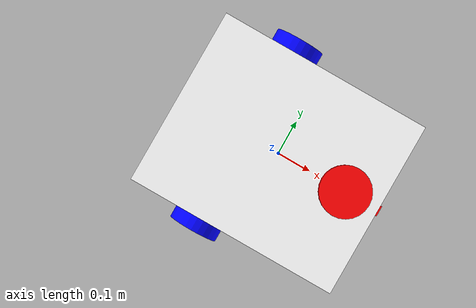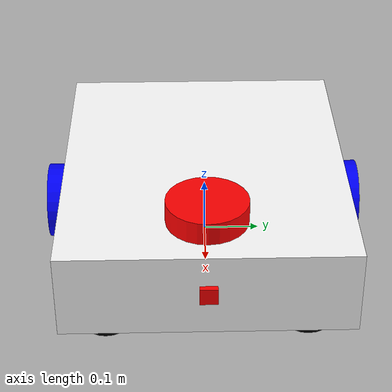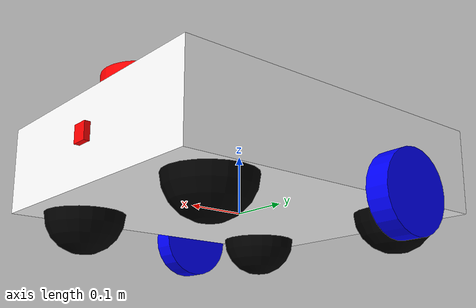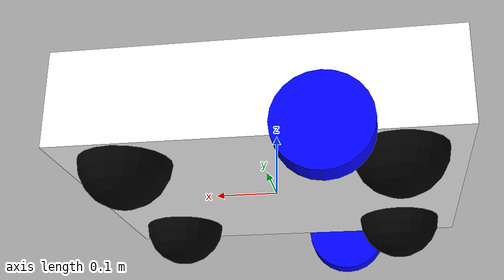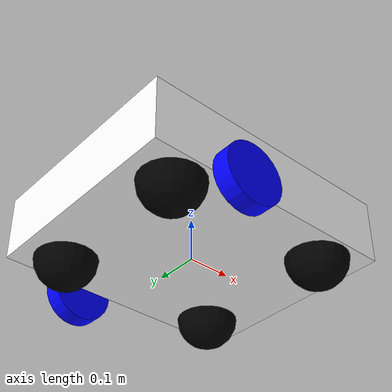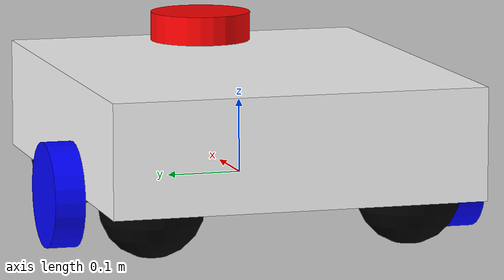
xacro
<?xml version="1.0"?>
<robot xmlns:xacro="http://www.ros.org/wiki/xacro"  name="robot">

    <xacro:arg name="use_ros2_control" default="true"/>

    <!-- Example link -->
    <xacro:include filename="robot_core.xacro"/>
    <xacro:include filename="lidar.xacro"/>
    <xacro:include filename="camera.xacro"/>
    <xacro:include filename="ros2_control.xacro"/>
</robot>

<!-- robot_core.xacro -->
<robot xmlns:xacro="http://www.ros.org/wiki/xacro">

    <xacro:include filename="inertial_macros.xacro"/>

    <material name="white">
        <color rgba="1 1 1 1" />
    </material>

    <material name="blue">
        <color rgba="0 0 1 1" />
    </material>

    <material name="orange">
        <color rgba="1 0.65 0 1" />
    </material>

    <material name="black">
        <color rgba="0 0 0 1" />
    </material>

    <material name="red">
        <color rgba="1 0 0 1" />
    </material>

    <!--BASE LINK-->
    <link name="base_link">
        <!-- You can add visuals and collision properties for the base_link here if needed -->
    </link>

    <!-- BASE_FOOTPRINT -->
    <joint name="base_footprint_joint" type="fixed">
        <parent link="base_link"/>
        <child link="base_footprint"/>
        <origin xyz="0 0 0" rpy="0 0 0"/>
    </joint>
    <link name="base_footprint">
    </link>

    <!--CHASSIS LINK-->
    <joint name="chassis_joint" type="fixed">
        <parent link="base_link"/>
        <child link="chassis"/>
        <origin xyz="-0.3 0 0"/>
        <xacro:inertial_box mass="2.0" x="0.6" y="0.5" z="0.15">
            <origin xyz="0.3 0 0.075" rpy="0 0 0"/>
        </xacro:inertial_box>
    </joint>

    <link name="chassis">
        <visual>
            <origin xyz="0.3 0 0.075" />
            <geometry>
                <box size="0.6 0.5 0.15" />
            </geometry>
            <material name="white" />
        </visual>
        <collision>
            <origin xyz="0.3 0 0.075" />
            <geometry>
                <box size="0.6 0.5 0.15" />
            </geometry>
        </collision>
    </link>
    <gazebo reference="chassis">
        <material>Gazebo/White</material>
    </gazebo>

    <!--LEFT WHEEL LINK-->
    <joint name="left_wheel_joint" type="continuous">
        <parent link="base_link"/>
        <child link="left_wheel"/>
        <origin xyz="-0.10 0.275 0" rpy="-${pi/2} 0 0"/>
        <axis xyz="0 0 1"/>
    </joint>

    <link name="left_wheel">
        <visual>
            <origin xyz="0 0 0"/>
            <geometry>
                <cylinder radius="0.07" length="0.04"/>
            </geometry>
            <material name="blue"/>
        </visual>
        <collision>
            <origin xyz="0 0 0"/>
            <geometry>
                <sphere radius="0.07"/>
            </geometry>
        </collision>
        <xacro:inertial_cylinder mass="0.1" length="0.04" radius="0.07">
            <origin xyz="0 0 0" rpy="0 0 0"/>
        </xacro:inertial_cylinder>
    </link>
    <gazebo reference="left_wheel">
        <material>Gazebo/Blue</material>
    </gazebo>

    <!--RIGHT WHEEL LINK-->
    <joint name="right_wheel_joint" type="continuous">
        <parent link="base_link"/>
        <child link="right_wheel"/>
        <origin xyz="-0.10 -0.275 0" rpy="${pi/2} 0 0"/>
        <axis xyz="0 0 -1"/>
    </joint>

    <link name="right_wheel">
        <visual>
            <origin xyz="0 0 0"/>
            <geometry>
                <cylinder radius="0.07" length="0.04"/>
            </geometry>
            <material name="blue"/>
        </visual>
        <collision>
            <origin xyz="0 0 0"/>
            <geometry>
                <sphere radius="0.07"/>
            </geometry>
        </collision>
        <xacro:inertial_cylinder mass="0.1" length="0.04" radius="0.07">
            <origin xyz="0 0 0" rpy="0 0 0"/>
        </xacro:inertial_cylinder>
    </link>
    <gazebo reference="right_wheel">
        <material>Gazebo/Blue</material>
    </gazebo>

    <!--CASTER WHEEL FRONT RIGHT-->
    <joint name="caster_wheel_front_right_joint" type="fixed">
        <parent link="chassis"/>
        <child link="caster_wheel_front_right"/>
        <origin xyz="0.50 0.175 0"/>
    </joint>

    <link name="caster_wheel_front_right">
        <visual>
            <origin xyz="0 0 0"/>
            <geometry>
                <sphere radius="0.07"/>
            </geometry>
            <material name="black"/>
        </visual>
        <collision>
            <origin xyz="0 0 0"/>
            <geometry>
                <sphere radius="0.07"/>
            </geometry>
        </collision>
        <xacro:inertial_sphere mass="0.1" radius="0.07">
            <origin xyz="0 0 0" rpy="0 0 0"/>
        </xacro:inertial_sphere>
    </link>
    <gazebo reference="caster_wheel_front_right">
        <material>Gazebo/Black</material>
        <mu1 value="0.0001"/>
        <mu2 value="0.0001"/>
    </gazebo>

    <!--CASTER WHEEL FRONT LEFT-->
    <joint name="caster_wheel_front_left_joint" type="fixed">
        <parent link="chassis"/>
        <child link="caster_wheel_front_left"/>
        <origin xyz="0.50 -0.175 0"/>
    </joint>

    <link name="caster_wheel_front_left">
        <visual>
            <origin xyz="0 0 0"/>
            <geometry>
                <sphere radius="0.07"/>
            </geometry>
            <material name="black"/>
        </visual>
        <collision>
            <origin xyz="0 0 0"/>
            <geometry>
                <sphere radius="0.07"/>
            </geometry>
        </collision>
        <xacro:inertial_sphere mass="0.1" radius="0.07">
            <origin xyz="0 0 0" rpy="0 0 0"/>
        </xacro:inertial_sphere>
    </link>
    <gazebo reference="caster_wheel_front_left">
        <material>Gazebo/Black</material>
        <mu1 value="0.0001"/>
        <mu2 value="0.0001"/>
    </gazebo>

    <!--CASTER WHEEL BACK RIGHT-->
    <joint name="caster_wheel_back_right_joint" type="fixed">
        <parent link="chassis"/>
        <child link="caster_wheel_back_right"/>
        <origin xyz="0.10 0.175 0"/>
    </joint>

    <link name="caster_wheel_back_right">
        <visual>
            <origin xyz="0 0 0"/>
            <geometry>
                <sphere radius="0.07"/>
            </geometry>
            <material name="black"/>
        </visual>
        <collision>
            <origin xyz="0 0 0"/>
            <geometry>
                <sphere radius="0.07"/>
            </geometry>
        </collision>
        <xacro:inertial_sphere mass="0.1" radius="0.07">
            <origin xyz="0 0 0" rpy="0 0 0"/>
        </xacro:inertial_sphere>
    </link>
    <gazebo reference="caster_wheel_back_right">
        <material>Gazebo/Black</material>
        <mu1 value="0.0001"/>
        <mu2 value="0.0001"/>
    </gazebo>

    <!--CASTER WHEEL BACK LEFT-->
    <joint name="caster_wheel_back_left_joint" type="fixed">
        <parent link="chassis"/>
        <child link="caster_wheel_back_left"/>
        <origin xyz="0.10 -0.175 0"/>
    </joint>

    <link name="caster_wheel_back_left">
        <visual>
            <origin xyz="0 0 0"/>
            <geometry>
                <sphere radius="0.07"/>
            </geometry>
            <material name="black"/>
        </visual>
        <collision>
            <origin xyz="0 0 0"/>
            <geometry>
                <sphere radius="0.07"/>
            </geometry>
        </collision>
        <xacro:inertial_sphere mass="0.1" radius="0.07">
            <origin xyz="0 0 0" rpy="0 0 0"/>
        </xacro:inertial_sphere>
    </link>
    <gazebo reference="caster_wheel_back_left">
        <material>Gazebo/Black</material>
        <mu1 value="0.0001"/>
        <mu2 value="0.0001"/>
    </gazebo>

</robot>

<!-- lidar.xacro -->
<robot xmlns:xacro="http://www.ros.org/wiki/xacro">

    <joint name="laser_joint" type="fixed">
        <parent link="chassis" />
        <child link="laser_frame" />
        <origin xyz="0.5 0 0.175" rpy="0 0 0"/>
    </joint>

    <link name="laser_frame">
        <visual>
            <origin xyz="0 0 0"/>
            <geometry>
                <cylinder radius="0.07" length="0.04"/>
            </geometry>
            <material name="red"/>
        </visual>
        <collision>
            <origin xyz="0 0 0"/>
            <geometry>
                <cylinder radius="0.07" length="0.04"/>
            </geometry>
        </collision>
        <xacro:inertial_cylinder mass="0.1" length="0.04" radius="0.07">
            <origin xyz="0 0 0" rpy="0 0 0"/>
        </xacro:inertial_cylinder>
    </link>

    <gazebo reference="laser_frame">
        <material>Gazebo/Red</material>
        <sensor name="laser" type="ray">
            <pose>0 0 0 0 0 0</pose>
            <visualize>true</visualize>
            <update_rate>10</update_rate>
            <ray>
                <scan>
                    <horizontal>
                        <samples>270</samples>
                        <resolution>1</resolution>
                        <min_angle>-2.3</min_angle>
                        <max_angle>2.3</max_angle>
                    </horizontal>
                </scan>
                <range>
                    <min>0.3</min>
                    <max>12</max>
                    <resolution>0.01</resolution>
                </range>
            </ray>
            <plugin name="laser_controller" filename="libgazebo_ros_ray_sensor.so">
                <ros>
                    <namespace>/</namespace>
                    <argument>~/out:=scan</argument>
                </ros>
                <output_type>sensor_msgs/LaserScan</output_type>
                <frame>laser_frame</frame>
            </plugin>
        </sensor>
    </gazebo>

</robot>

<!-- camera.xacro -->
<robot xmlns:xacro="http://www.ros.org/wiki/xacro">

    <joint name="camera_joint" type="fixed">
        <parent link="chassis" />
        <child link="camera_link" />
        <origin xyz="0.605 0 0.08" rpy="0 0 0"/>
    </joint>

    <link name="camera_link">
        <visual>
            <origin xyz="0 0 0"/>
            <geometry>
                <box size="0.010 0.03 0.03"/>
            </geometry>
            <material name="red"/>
        </visual>
    </link>

    <joint name="camera_optical_joint" type="fixed">
        <parent link="camera_link" />
        <child link="camera_link_optical" />
        <origin xyz="0 0 0" rpy="${-pi/2} 0 ${-pi/2}"/>
    </joint>

    <link name="camera_link_optical"></link>

    <gazebo reference="camera_link">
        <material>Gazebo/Red</material>

        <sensor name="camera" type="camera">
            <pose>0 0 0 0 0 0</pose>
            <visualize>true</visualize>
            <update_rate>10</update_rate>
            <camera>
                <horizontal_fov>1.089</horizontal_fov>
                <image>
                    <format>R8G8B8</format>
                    <width>640</width>
                    <height>480</height>
                </image>
                <clip>
                    <near>0.05</near>
                    <far>8.0</far>
                </clip>
            </camera>
            <plugin name="camera_controller" filename="libgazebo_ros_camera.so">
                <frame>camera_link_optical</frame>
            </plugin>
        </sensor>
    </gazebo>

</robot>
